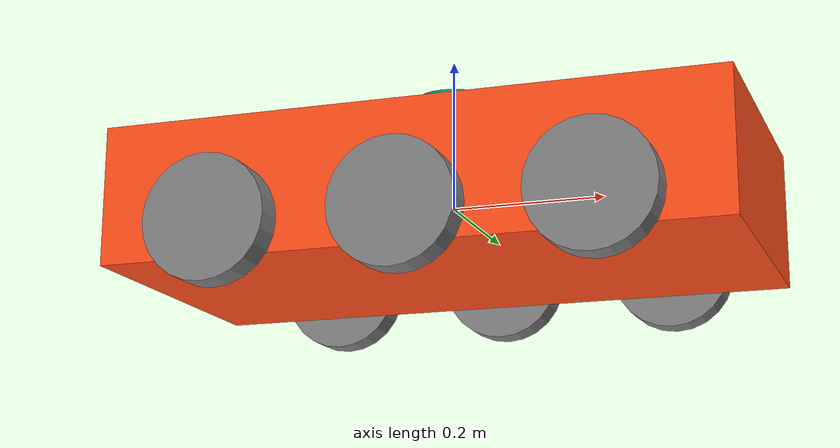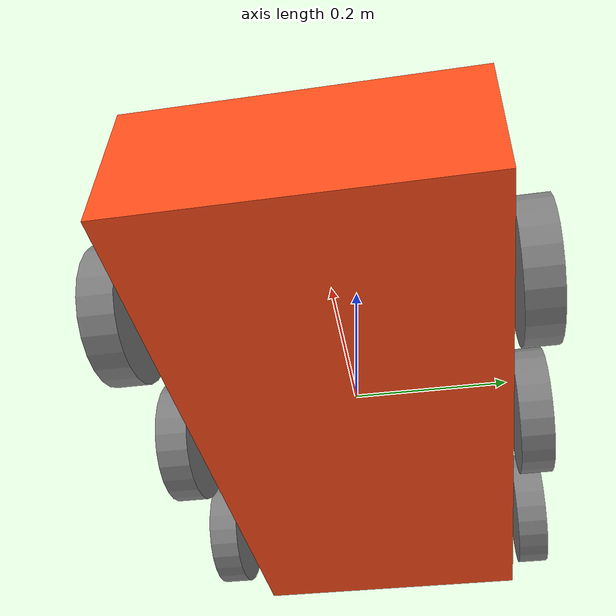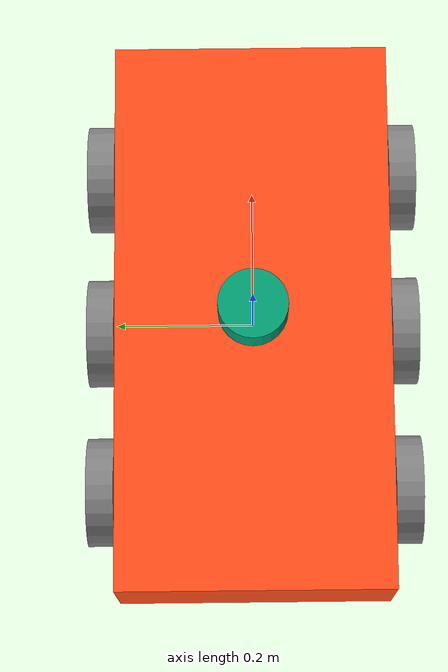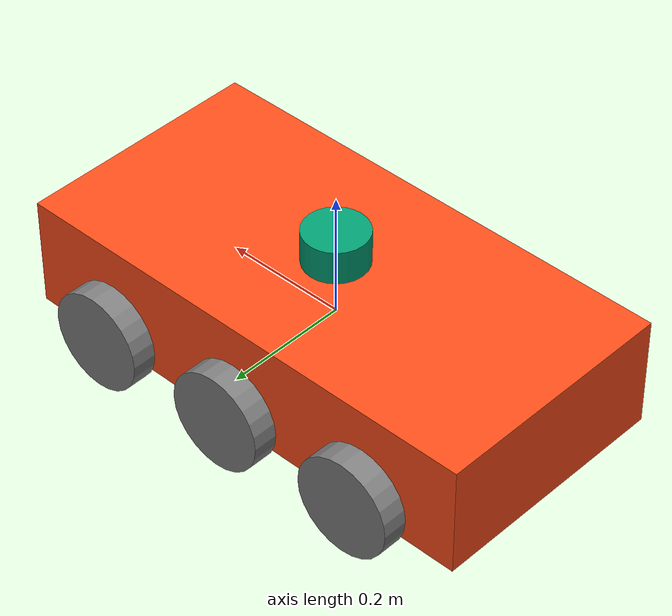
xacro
<?xml version="1.0"?>
<robot name="six_wheel_simplified" xmlns:xacro="http://ros.org/wiki/xacro">

    <!-- Define robot constants -->
    <xacro:property name="base_width" value="0.4" />
    <xacro:property name="base_length" value="0.8" />
    <xacro:property name="base_height" value="0.18" />
    <xacro:property name="base_mass" value="1.0" />

    <xacro:property name="wheel_radius" value="0.08" />
    <xacro:property name="wheel_thickness" value="0.04" />
    <xacro:property name="wheel_mass" value="0.05" />
    <xacro:property name="wheel_gap_y" value="0.025" />
    <xacro:property name="wheel_offset_z" value="0.05" />
    <xacro:property name="wheel_offset_x" value="0.12" />

    <xacro:include filename="inertial_macros.xacro" />

    <!-- Define gazebo system joints -->
    <ros2_control name="GazeboSystem" type="system">
        <hardware>
            <plugin>gazebo_ros2_control/GazeboSystem</plugin>
        </hardware>
        <joint name="left_front_wheel_joint">
            <command_interface name="velocity">
                <param name="min">-10</param>
                <param name="max">10</param>
            </command_interface>
            <state_interface name="velocity" />
            <state_interface name="position" />
        </joint>

        <joint name="right_front_wheel_joint">
            <command_interface name="velocity">
                <param name="min">-10</param>
                <param name="max">10</param>
            </command_interface>
            <state_interface name="velocity" />
            <state_interface name="position" />
        </joint>

        <joint name="left_center_wheel_joint">
            <command_interface name="velocity">
                <param name="min">-10</param>
                <param name="max">10</param>
            </command_interface>
            <state_interface name="velocity" />
            <state_interface name="position" />
        </joint>

        <joint name="right_center_wheel_joint">
            <command_interface name="velocity">
                <param name="min">-10</param>
                <param name="max">10</param>
            </command_interface>
            <state_interface name="velocity" />
            <state_interface name="position" />
        </joint>

        <joint name="left_rear_wheel_joint">
            <command_interface name="velocity">
                <param name="min">-10</param>
                <param name="max">10</param>
            </command_interface>
            <state_interface name="velocity" />
            <state_interface name="position" />
        </joint>

        <joint name="right_rear_wheel_joint">
            <command_interface name="velocity">
                <param name="min">-10</param>
                <param name="max">10</param>
            </command_interface>
            <state_interface name="velocity" />
            <state_interface name="position" />
        </joint>
    </ros2_control>

    <gazebo>
        <plugin filename="libgazebo_ros2_control.so" name="gazebo_ros2_control">
            <parameters>$(find urc_bringup)/config/ros2_control_walli.yaml</parameters>
        </plugin>
    </gazebo>

    <!-- Robot Base -->
    <link name="base_link">
        <visual>
            <geometry>
                <box size="${base_length} ${base_width} ${base_height}" />
            </geometry>
            <material name="Orange">
                <color rgba="1.0 0.3 0.1 1.0" />
            </material>
        </visual>

        <collision>
            <geometry>
                <box size="${base_length} ${base_width} ${base_height}" />
            </geometry>
        </collision>

        <xacro:box_inertia m="${base_mass}" w="${base_width}" d="${base_length}" h="${base_height}" />
    </link>

    <gazebo reference="base_link">
        <material>Gazebo/Orange</material>
    </gazebo>

    <!-- Robot Footprint -->
    <link name="base_footprint">
    </link>

    <joint name="base_joint" type="fixed">
        <parent link="base_link" />
        <child link="base_footprint" />
        <origin xyz="0.0 0.0 ${-(wheel_radius+wheel_offset_z)}" rpy="0 0 0" />
    </joint>

    <!-- Wheels -->
    <xacro:macro name="wheel" params="prefix x_mult y_reflect">
        <joint name="${prefix}_joint" type="continuous">
            <parent link="base_link" />
            <child link="${prefix}_link" />
            <origin
                xyz="${x_mult*wheel_offset_x} ${-y_reflect*(base_width/2+wheel_gap_y)} ${-wheel_offset_z}"
                rpy="${y_reflect*pi/2} 0 0" />
            <axis xyz="0 0 ${-y_reflect}" />
        </joint>

        <link name="${prefix}_link">
            <visual>
                <geometry>
                    <cylinder radius="${wheel_radius}" length="${wheel_thickness}" />
                </geometry>
                <material name="Gray">
                    <color rgba="0.5 0.5 0.5 1.0" />
                </material>
            </visual>

            <collision>
                <geometry>
                    <cylinder radius="${wheel_radius}" length="${wheel_thickness}" />
                </geometry>
            </collision>

            <xacro:cylinder_inertia m="${wheel_mass}" r="${wheel_radius}" h="${wheel_thickness}" />
        </link>
    </xacro:macro>

    <xacro:wheel prefix="left_front_wheel" x_mult="-2" y_reflect="1" />
    <xacro:wheel prefix="left_center_wheel" x_mult="0" y_reflect="1" />
    <xacro:wheel prefix="left_rear_wheel" x_mult="2" y_reflect="1" />

    <xacro:wheel prefix="right_front_wheel" x_mult="-2" y_reflect="-1" />
    <xacro:wheel prefix="right_center_wheel" x_mult="0" y_reflect="-1" />
    <xacro:wheel prefix="right_rear_wheel" x_mult="2" y_reflect="-1" />

    <!-- GPS -->
    <link name="gps">
        <visual>
            <geometry>
                <box size="0.05 0.05 0.05" />
            </geometry>
        </visual>
        <collision>
            <geometry>
                <box size="0.05 0.05 0.05" />
            </geometry>
        </collision>
    </link>
    <joint name="gps_joint" type="fixed">
        <axis xyz="1 0 0" />
        <origin xyz="00 0 0" />
        <parent link="base_link" />
        <child link="gps" />
    </joint>
    <gazebo reference="gps">
        <sensor name="gps" type="gps">
            <plugin filename="libgazebo_ros_gps_sensor.so" name="gps_plugin">
                <ros>
                    <namespace>/gps</namespace>
                    <remapping>~/out:=data</remapping>
                </ros>
                <frame_name>gps</frame_name>
            </plugin>
            <always_on>true</always_on>
            <updateRate>30</updateRate>
        </sensor>
    </gazebo>

    <link name="imu_link">
        <visual>
            <geometry>
                <box size="0.1 0.1 0.1" />
            </geometry>
        </visual>

        <collision>
            <geometry>
                <box size="0.1 0.1 0.1" />
            </geometry>
        </collision>
    </link>

    <joint name="imu_joint" type="fixed">
        <parent link="base_link" />
        <child link="imu_link" />
        <origin xyz="0 0 0.01" />
    </joint>

    <gazebo reference="imu_link">
        <sensor name="imu_sensor" type="imu">
            <plugin filename="libgazebo_ros_imu_sensor.so" name="imu_plugin">
                <ros>
                    <remapping>~/out:=imu/data</remapping>
                </ros>
                <initial_orientation_as_reference>false</initial_orientation_as_reference>
            </plugin>
            <always_on>true</always_on>
            <update_rate>100</update_rate>
            <visualize>true</visualize>
            <imu>
                <angular_velocity>
                    <x>
                        <noise type="gaussian">
                            <mean>0.0</mean>
                            <stddev>2e-4</stddev>
                            <bias_mean>0.0000075</bias_mean>
                            <bias_stddev>0.0000008</bias_stddev>
                        </noise>
                    </x>
                    <y>
                        <noise type="gaussian">
                            <mean>0.0</mean>
                            <stddev>2e-4</stddev>
                            <bias_mean>0.0000075</bias_mean>
                            <bias_stddev>0.0000008</bias_stddev>
                        </noise>
                    </y>
                    <z>
                        <noise type="gaussian">
                            <mean>0.0</mean>
                            <stddev>2e-4</stddev>
                            <bias_mean>0.0000075</bias_mean>
                            <bias_stddev>0.0000008</bias_stddev>
                        </noise>
                    </z>
                </angular_velocity>
                <linear_acceleration>
                    <x>
                        <noise type="gaussian">
                            <mean>0.0</mean>
                            <stddev>1.7e-2</stddev>
                            <bias_mean>0.1</bias_mean>
                            <bias_stddev>0.001</bias_stddev>
                        </noise>
                    </x>
                    <y>
                        <noise type="gaussian">
                            <mean>0.0</mean>
                            <stddev>1.7e-2</stddev>
                            <bias_mean>0.1</bias_mean>
                            <bias_stddev>0.001</bias_stddev>
                        </noise>
                    </y>
                    <z>
                        <noise type="gaussian">
                            <mean>0.0</mean>
                            <stddev>1.7e-2</stddev>
                            <bias_mean>0.1</bias_mean>
                            <bias_stddev>0.001</bias_stddev>
                        </noise>
                    </z>
                </linear_acceleration>
            </imu>
        </sensor>
    </gazebo>

    <link name="lidar_link">
        <inertial>
            <origin xyz="0 0 0" rpy="0 0 0" />
            <mass value="0.125" />
            <inertia ixx="0.001" ixy="0" ixz="0" iyy="0.001" iyz="0" izz="0.001" />
        </inertial>

        <collision>
            <origin xyz="0 0 0" rpy="0 0 0" />
            <geometry>
                <cylinder radius="0.0508" length="0.055" />
            </geometry>
        </collision>

        <visual>
            <origin xyz="0 0 0" rpy="0 0 0" />
            <geometry>
                <cylinder radius="0.0508" length="0.055" />
            </geometry>
        </visual>
    </link>

    <joint name="lidar_joint" type="fixed">
        <parent link="base_link" />
        <child link="lidar_link" />
        <origin xyz="0 0 0.12" rpy="0 0 0" />
    </joint>

    <gazebo reference="lidar_link">
        <sensor name="lidar" type="ray">
            <always_on>true</always_on>
            <visualize>true</visualize>
            <update_rate>5</update_rate>
            <ray>
                <scan>
                    <horizontal>
                        <samples>360</samples>
                        <resolution>1.000000</resolution>
                        <min_angle>0.000000</min_angle>
                        <max_angle>6.280000</max_angle>
                    </horizontal>
                </scan>
                <range>
                    <min>0.120000</min>
                    <max>3.5</max>
                    <resolution>0.015000</resolution>
                </range>
                <noise>
                    <type>gaussian</type>
                    <mean>0.0</mean>
                    <stddev>0.01</stddev>
                </noise>
            </ray>
            <plugin name="scan" filename="libgazebo_ros_ray_sensor.so">
                <ros>
                    <remapping>~/out:=scan/data</remapping>
                </ros>
                <output_type>sensor_msgs/LaserScan</output_type>
                <frame_name>lidar_link</frame_name>
            </plugin>
        </sensor>
    </gazebo>

    <link name="camera_link">
        <visual>
            <origin xyz="0 0 0" rpy="0 0 0" />
            <geometry>
                <box size="0.015 0.130 0.022" />
            </geometry>
        </visual>

        <collision>
            <origin xyz="0 0 0" rpy="0 0 0" />
            <geometry>
                <box size="0.015 0.130 0.022" />
            </geometry>
        </collision>

        <inertial>
            <origin xyz="0 0 0" rpy="0 0 0" />
            <mass value="0.035" />
            <inertia ixx="0.001" ixy="0" ixz="0" iyy="0.001" iyz="0" izz="0.001" />
        </inertial>
    </link>

    <joint name="camera_joint" type="fixed">
        <parent link="base_link" />
        <child link="camera_link" />
        <origin xyz="0.215 0 0.05" rpy="0 0 0" />
    </joint>

    <link name="camera_depth_frame" />

    <joint name="camera_depth_joint" type="fixed">
        <origin xyz="0 0 0" rpy="${-pi/2} 0 ${-pi/2}" />
        <parent link="camera_link" />
        <child link="camera_depth_frame" />
    </joint>

    <gazebo reference="camera_link">
        <sensor name="depth_camera" type="depth">
            <visualize>true</visualize>
            <update_rate>30.0</update_rate>
            <camera name="camera">
                <horizontal_fov>1.047198</horizontal_fov>
                <image>
                    <width>640</width>
                    <height>480</height>
                    <format>R8G8B8</format>
                </image>
                <clip>
                    <near>0.05</near>
                    <far>3</far>
                </clip>
            </camera>
            <plugin name="depth_camera_controller" filename="libgazebo_ros_camera.so">
                <baseline>0.2</baseline>
                <alwaysOn>true</alwaysOn>
                <updateRate>0.0</updateRate>
                <frame_name>camera_depth_frame</frame_name>
                <pointCloudCutoff>0.5</pointCloudCutoff>
                <pointCloudCutoffMax>3.0</pointCloudCutoffMax>
                <distortionK1>0</distortionK1>
                <distortionK2>0</distortionK2>
                <distortionK3>0</distortionK3>
                <distortionT1>0</distortionT1>
                <distortionT2>0</distortionT2>
                <CxPrime>0</CxPrime>
                <Cx>0</Cx>
                <Cy>0</Cy>
                <focalLength>0</focalLength>
                <hackBaseline>0</hackBaseline>
            </plugin>
        </sensor>
    </gazebo>
</robot>
